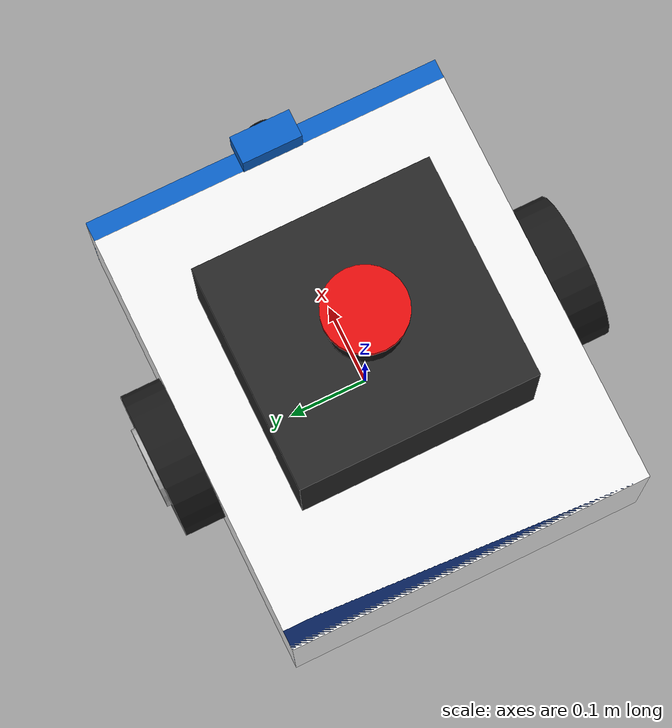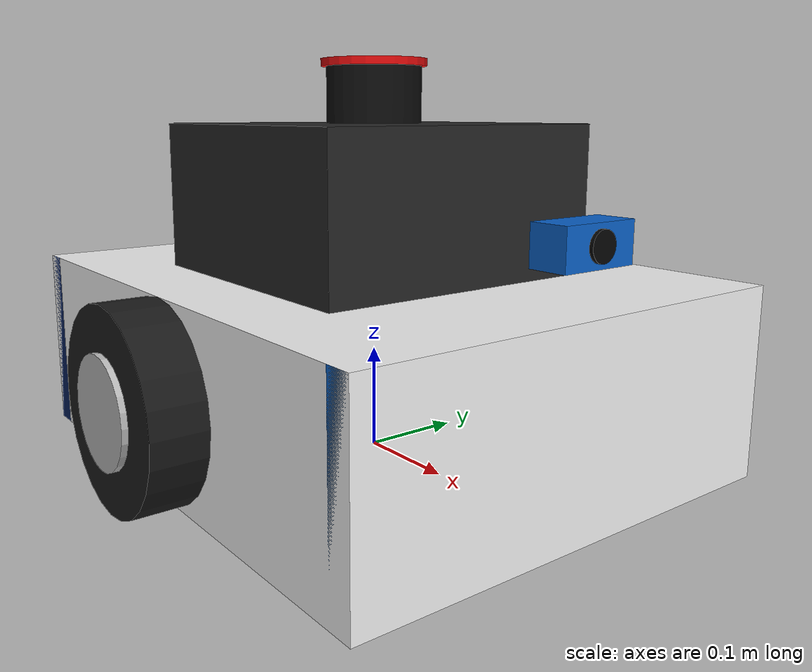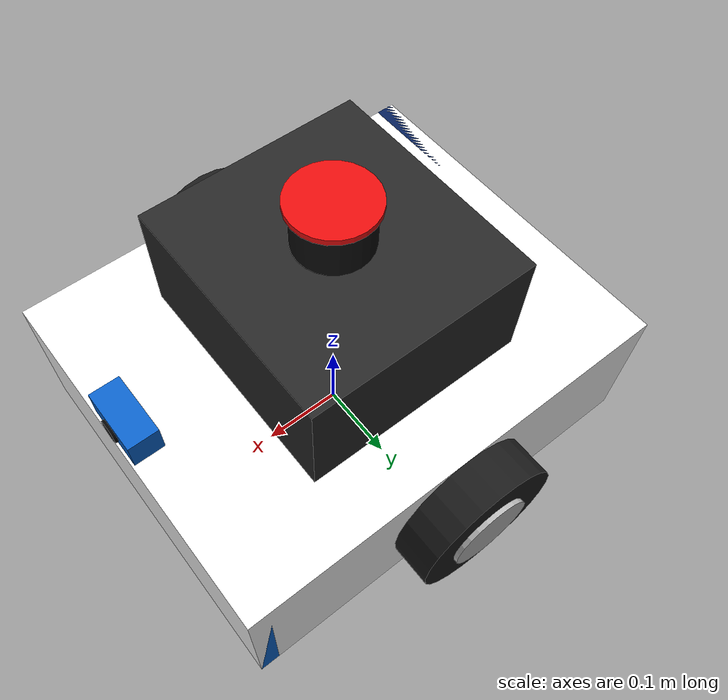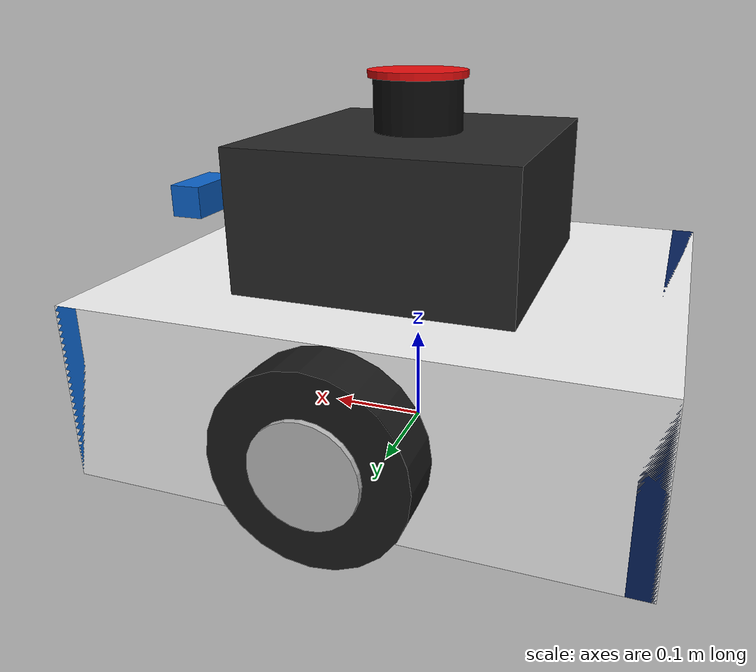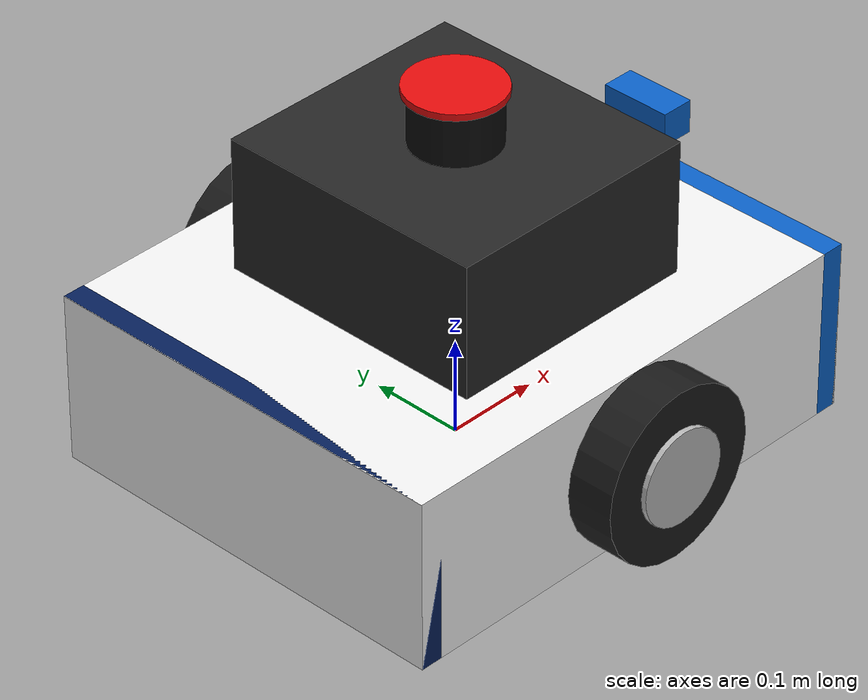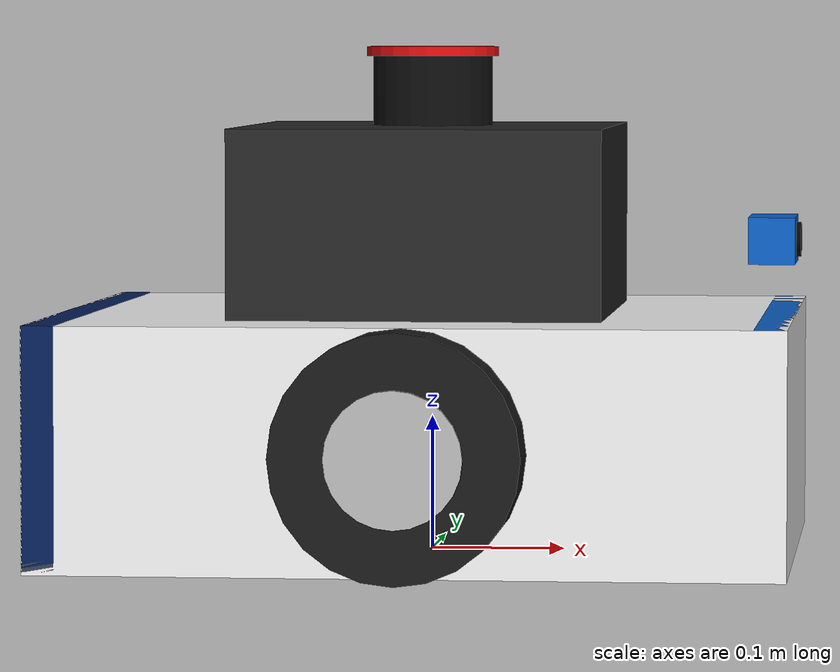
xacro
<?xml version="1.0"?>
<robot name="neo_robot" xmlns:xacro="http://www.ros.org/wiki/xacro">

  <!-- ===== DIMENSIONS ===== -->
  <xacro:property name="base_length"   value="0.55"/>
  <xacro:property name="base_width"    value="0.45"/>
  <xacro:property name="base_height"   value="0.18"/>
  <xacro:property name="base_mass"     value="15.0"/>

  <xacro:property name="wheel_radius"  value="0.09"/>
  <xacro:property name="wheel_width"   value="0.05"/>
  <xacro:property name="wheel_mass"    value="1.2"/>
  <xacro:property name="wheel_y"       value="0.25"/>

  <xacro:property name="caster_radius" value="0.035"/>
  <xacro:property name="caster_x"      value="0.20"/>
  <xacro:property name="caster_y"      value="0.18"/>

  <!-- ===== INERTIA MACROS ===== -->

  <!-- Solid box -->
  <xacro:macro name="box_inertia" params="m x y z">
    <inertial>
      <mass value="${m}"/>
      <inertia ixx="${m*(y*y+z*z)/12}" ixy="0" ixz="0"
               iyy="${m*(x*x+z*z)/12}" iyz="0"
               izz="${m*(x*x+y*y)/12}"/>
    </inertial>
  </xacro:macro>

  <!-- Cylinder with axis along Y (wheel) -->
  <xacro:macro name="wheel_inertia" params="m r l">
    <inertial>
      <mass value="${m}"/>
      <inertia ixx="${m*(3*r*r+l*l)/12}" ixy="0" ixz="0"
               iyy="${m*r*r/2}"          iyz="0"
               izz="${m*(3*r*r+l*l)/12}"/>
    </inertial>
  </xacro:macro>

  <!-- Solid sphere -->
  <xacro:macro name="sphere_inertia" params="m r">
    <inertial>
      <mass value="${m}"/>
      <inertia ixx="${2*m*r*r/5}" ixy="0" ixz="0"
               iyy="${2*m*r*r/5}" iyz="0"
               izz="${2*m*r*r/5}"/>
    </inertial>
  </xacro:macro>

  <!-- ===== BASE FOOTPRINT ===== -->
  <!-- Virtual ground-level link required by Nav2 / AMCL -->
  <link name="base_footprint"/>

  <joint name="base_footprint_joint" type="fixed">
    <parent link="base_footprint"/>
    <child  link="base_link"/>
    <origin xyz="0 0 ${wheel_radius}" rpy="0 0 0"/>
  </joint>

  <!-- ===== CHASSIS ===== -->
  <link name="base_link">
    <xacro:box_inertia m="${base_mass}"
                       x="${base_length}"
                       y="${base_width}"
                       z="${base_height}"/>
    <collision>
      <geometry><box size="${base_length} ${base_width} ${base_height}"/></geometry>
    </collision>

    <!-- White main body -->
    <visual>
      <origin xyz="0 0 0" rpy="0 0 0"/>
      <geometry><box size="${base_length} ${base_width} ${base_height}"/></geometry>
      <material name="white"><color rgba="0.95 0.95 0.95 1.0"/></material>
    </visual>

    <!-- Dark sensor dome on top -->
    <visual>
      <origin xyz="0 0 ${base_height*0.5 + 0.07}" rpy="0 0 0"/>
      <geometry><box size="${base_length*0.5} ${base_width*0.65} 0.14"/></geometry>
      <material name="charcoal"><color rgba="0.15 0.15 0.15 1.0"/></material>
    </visual>

    <!-- Blue front accent stripe -->
    <visual>
      <origin xyz="${base_length*0.5 - 0.012} 0 0" rpy="0 0 0"/>
      <geometry><box size="0.024 ${base_width} ${base_height}"/></geometry>
      <material name="hospital_blue"><color rgba="0.04 0.38 0.78 1.0"/></material>
    </visual>

    <!-- Dark rear stripe so front/back are obvious -->
    <visual>
      <origin xyz="${-(base_length*0.5 - 0.012)} 0 0" rpy="0 0 0"/>
      <geometry><box size="0.024 ${base_width} ${base_height}"/></geometry>
      <material name="dark_blue"><color rgba="0.02 0.12 0.35 1.0"/></material>
    </visual>
  </link>

  <!-- ===== DRIVEN WHEEL MACRO ===== -->
  <!--
    side   : "left" or "right"  - used for link/joint names
    y_off  : actual Y position  - +0.25 for left, -0.25 for right
  -->
  <xacro:macro name="driven_wheel" params="side y_off">

    <link name="${side}_wheel_link">
      <xacro:wheel_inertia m="${wheel_mass}" r="${wheel_radius}" l="${wheel_width}"/>

      <collision>
        <origin xyz="0 0 0" rpy="${pi/2} 0 0"/>
        <geometry><cylinder radius="${wheel_radius}" length="${wheel_width}"/></geometry>
      </collision>

      <!-- Tyre -->
      <visual>
        <origin xyz="0 0 0" rpy="${pi/2} 0 0"/>
        <geometry><cylinder radius="${wheel_radius}" length="${wheel_width}"/></geometry>
        <material name="rubber"><color rgba="0.10 0.10 0.10 1.0"/></material>
      </visual>

      <!-- Hub cap -->
      <visual>
        <origin xyz="0 ${wheel_width * 0.52 if y_off > 0 else -wheel_width * 0.52} 0" rpy="${pi/2} 0 0"/>
        <geometry><cylinder radius="${wheel_radius*0.55}" length="0.009"/></geometry>
        <material name="silver"><color rgba="0.72 0.72 0.72 1.0"/></material>
      </visual>
    </link>

    <joint name="${side}_wheel_joint" type="continuous">
      <parent link="base_link"/>
      <child  link="${side}_wheel_link"/>
      <origin xyz="0 ${y_off} 0" rpy="0 0 0"/>
      <axis xyz="0 1 0"/>
      <dynamics damping="0.05" friction="0.5"/>
      <limit effort="10.0" velocity="5.0"/>
    </joint>

  </xacro:macro>

  <!-- Instantiate driven wheels (explicit y values - no expressions) -->
  <xacro:driven_wheel side="left"  y_off=" 0.25"/>
  <xacro:driven_wheel side="right" y_off="-0.25"/>

  <!-- ===== CASTER MACRO ===== -->
  <xacro:macro name="caster" params="name cx cy">
    <link name="${name}_caster_link">
      <xacro:sphere_inertia m="0.3" r="${caster_radius}"/>
      <collision><geometry><sphere radius="${caster_radius}"/></geometry></collision>
      <visual>
        <geometry><sphere radius="${caster_radius}"/></geometry>
        <material name="caster_grey"><color rgba="0.55 0.55 0.55 1.0"/></material>
      </visual>
    </link>

    <joint name="${name}_caster_joint" type="fixed">
      <parent link="base_link"/>
      <child  link="${name}_caster_link"/>
      <origin xyz="${cx} ${cy} ${-wheel_radius + caster_radius}" rpy="0 0 0"/>
    </joint>
  </xacro:macro>

  <!-- Four corner casters -->
  <xacro:caster name="fl" cx=" 0.20" cy=" 0.18"/>
  <xacro:caster name="fr" cx=" 0.20" cy="-0.18"/>
  <xacro:caster name="rl" cx="-0.20" cy=" 0.18"/>
  <xacro:caster name="rr" cx="-0.20" cy="-0.18"/>

  <!-- ===== LIDAR ===== -->
  <link name="lidar_link">
    <inertial>
      <mass value="0.25"/>
      <inertia ixx="0.0005" ixy="0" ixz="0"
               iyy="0.0005" iyz="0" izz="0.0005"/>
    </inertial>
    <collision>
      <geometry><cylinder radius="0.045" length="0.055"/></geometry>
    </collision>
    <!-- Black housing -->
    <visual>
      <geometry><cylinder radius="0.045" length="0.055"/></geometry>
      <material name="lidar_black"><color rgba="0.05 0.05 0.05 1.0"/></material>
    </visual>
    <!-- Bright red scan ring - unmistakable in sim -->
    <visual>
      <origin xyz="0 0 0.028" rpy="0 0 0"/>
      <geometry><cylinder radius="0.050" length="0.007"/></geometry>
      <material name="scan_red"><color rgba="0.90 0.05 0.05 1.0"/></material>
    </visual>
  </link>

  <joint name="lidar_joint" type="fixed">
    <parent link="base_link"/>
    <child  link="lidar_link"/>
    <origin xyz="0 0 ${base_height*0.5 + 0.14 + 0.028}" rpy="0 0 0"/>
  </joint>

  <!-- ===== CAMERA ===== -->
  <link name="camera_link">
    <inertial>
      <mass value="0.08"/>
      <inertia ixx="0.0001" ixy="0" ixz="0"
               iyy="0.0001" iyz="0" izz="0.0001"/>
    </inertial>
    <collision>
      <geometry><box size="0.035 0.075 0.035"/></geometry>
    </collision>
    <visual>
      <geometry><box size="0.035 0.075 0.035"/></geometry>
      <material name="cam_blue"><color rgba="0.04 0.38 0.78 1.0"/></material>
    </visual>
    <!-- Lens -->
    <visual>
      <origin xyz="0.018 0 0" rpy="0 ${pi/2} 0"/>
      <geometry><cylinder radius="0.013" length="0.006"/></geometry>
      <material name="lens_dark"><color rgba="0.02 0.02 0.02 1.0"/></material>
    </visual>
  </link>

  <joint name="camera_joint" type="fixed">
    <parent link="base_link"/>
    <child  link="camera_link"/>
    <origin xyz="${base_length*0.5 - 0.018} 0 ${base_height*0.5 + 0.055}" rpy="0 0 0"/>
  </joint>

  <!-- ROS camera optical frame (Z-forward convention) -->
  <link name="camera_optical_link"/>
  <joint name="camera_optical_joint" type="fixed">
    <parent link="camera_link"/>
    <child  link="camera_optical_link"/>
    <origin xyz="0 0 0" rpy="${-pi/2} 0 ${-pi/2}"/>
  </joint>

  <!-- ===== GAZEBO PLUGINS ===== -->

  <gazebo>
    <!-- Differential drive motor controller -->
    <plugin filename="gz-sim-diff-drive-system"
            name="gz::sim::systems::DiffDrive">
      <left_joint>left_wheel_joint</left_joint>
      <right_joint>right_wheel_joint</right_joint>
      <wheel_separation>0.50</wheel_separation>
      <wheel_radius>0.09</wheel_radius>
      <topic>/cmd_vel</topic>
      <odom_topic>/odom</odom_topic>
      <frame_id>odom</frame_id>
      <child_frame_id>base_footprint</child_frame_id>
      <max_linear_acceleration>0.8</max_linear_acceleration>
      <min_linear_acceleration>-0.8</min_linear_acceleration>
      <max_angular_acceleration>1.5</max_angular_acceleration>
    </plugin>

    <!-- Publish wheel joint states so RViz shows wheels rotating -->
    <plugin filename="gz-sim-joint-state-publisher-system"
            name="gz::sim::systems::JointStatePublisher">
      <joint_name>left_wheel_joint</joint_name>
      <joint_name>right_wheel_joint</joint_name>
    </plugin>
  </gazebo>

  <!-- LiDAR sensor -->
  <!-- frame_id forces Gazebo to publish scan with frame = lidar_link -->
  <!-- Without this Gazebo Harmonic uses the scoped name: -->
  <!-- neo_robot/base_footprint/lidar_sensor which breaks TF -->
  <gazebo reference="lidar_link">
    <sensor name="lidar_sensor" type="gpu_lidar">
      <topic>/scan</topic>
      <gz_frame_id>lidar_link</gz_frame_id>
      <update_rate>10</update_rate>
      <lidar>
        <scan>
          <horizontal>
            <samples>360</samples>
            <resolution>1</resolution>
            <min_angle>-3.14159</min_angle>
            <max_angle>3.14159</max_angle>
          </horizontal>
        </scan>
        <range>
          <min>0.15</min>
          <max>12.0</max>
          <resolution>0.01</resolution>
        </range>
        <noise>
          <type>gaussian</type>
          <mean>0.0</mean>
          <stddev>0.012</stddev>
        </noise>
      </lidar>
      <always_on>true</always_on>
      <visualize>true</visualize>
    </sensor>
  </gazebo>

  <!-- RGB Camera sensor -->
  <gazebo reference="camera_link">
    <sensor name="camera_sensor" type="camera">
      <topic>/camera/image_raw</topic>
      <gz_frame_id>camera_optical_link</gz_frame_id>
      <update_rate>30</update_rate>
      <camera>
        <horizontal_fov>1.047</horizontal_fov>
        <image>
          <width>640</width>
          <height>480</height>
          <format>R8G8B8</format>
        </image>
        <clip>
          <near>0.1</near>
          <far>100.0</far>
        </clip>
      </camera>
      <always_on>true</always_on>
      <visualize>false</visualize>
    </sensor>
  </gazebo>

  <!-- Friction / contact properties -->
  <gazebo reference="left_wheel_link">
    <mu1>2.0</mu1><mu2>2.0</mu2>
    <kp>1000000.0</kp><kd>1.0</kd>
  </gazebo>
  <gazebo reference="right_wheel_link">
    <mu1>2.0</mu1><mu2>2.0</mu2>
    <kp>1000000.0</kp><kd>1.0</kd>
  </gazebo>
  <gazebo reference="fl_caster_link">
    <mu1>0.01</mu1><mu2>0.01</mu2><kp>10000000.0</kp><kd>1.0</kd>
    <minDepth>0.001</minDepth>
  </gazebo>
  <gazebo reference="fr_caster_link">
    <mu1>0.01</mu1><mu2>0.01</mu2><kp>10000000.0</kp><kd>1.0</kd>
    <minDepth>0.001</minDepth>
  </gazebo>
  <gazebo reference="rl_caster_link">
    <mu1>0.01</mu1><mu2>0.01</mu2><kp>10000000.0</kp><kd>1.0</kd>
    <minDepth>0.001</minDepth>
  </gazebo>
  <gazebo reference="rr_caster_link">
    <mu1>0.01</mu1><mu2>0.01</mu2><kp>10000000.0</kp><kd>1.0</kd>
    <minDepth>0.001</minDepth>
  </gazebo>

</robot>
